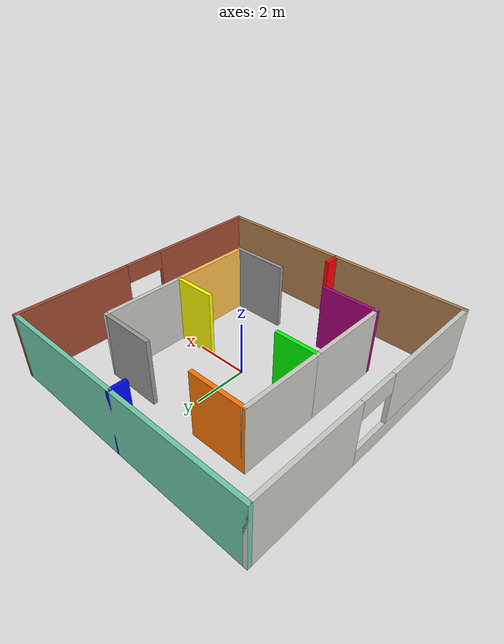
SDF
<?xml version='1.0'?>
<sdf version='1.6'>
  <model name='project_building'>
    <pose frame=''>0 0 0 0 -0 0</pose>
    <link name='Wall_0'>
      <collision name='Wall_0_Collision'>
        <geometry>
          <box>
            <size>3.15 0.15 2.5</size>
          </box>
        </geometry>
        <pose frame=''>0 0 1.25 0 -0 0</pose>
      </collision>
      <visual name='Wall_0_Visual'>
        <pose frame=''>0 0 1.25 0 -0 0</pose>
        <geometry>
          <box>
            <size>3.15 0.15 2.5</size>
          </box>
        </geometry>
        <material>
          <script>
            <uri>file://media/materials/scripts/gazebo.material</uri>
            <name>Gazebo/CeilingTiled</name>
          </script>
          <ambient>0.435294 0.796078 0.67451 1</ambient>
        </material>
        <meta>
          <layer>0</layer>
        </meta>
      </visual>
      <pose frame=''>-3 1.5 0 0 -0 1.5708</pose>
    </link>
    <link name='Wall_10'>
      <collision name='Wall_10_Collision'>
        <geometry>
          <box>
            <size>3.15 0.15 2.5</size>
          </box>
        </geometry>
        <pose frame=''>0 0 1.25 0 -0 0</pose>
      </collision>
      <visual name='Wall_10_Visual'>
        <pose frame=''>0 0 1.25 0 -0 0</pose>
        <geometry>
          <box>
            <size>3.15 0.15 2.5</size>
          </box>
        </geometry>
        <material>
          <script>
            <uri>file://media/materials/scripts/gazebo.material</uri>
            <name>Gazebo/CeilingTiled</name>
          </script>
          <ambient>0.921569 0.807843 0.615686 1</ambient>
        </material>
        <meta>
          <layer>0</layer>
        </meta>
      </visual>
      <pose frame=''>3 1.5 0 0 -0 1.5708</pose>
    </link>
    <link name='Wall_12'>
      <collision name='Wall_12_Collision'>
        <geometry>
          <box>
            <size>2.15 0.15 2.5</size>
          </box>
        </geometry>
        <pose frame=''>0 0 1.25 0 -0 0</pose>
      </collision>
      <visual name='Wall_12_Visual'>
        <pose frame=''>0 0 1.25 0 -0 0</pose>
        <geometry>
          <box>
            <size>2.15 0.15 2.5</size>
          </box>
        </geometry>
        <material>
          <script>
            <uri>file://media/materials/scripts/gazebo.material</uri>
            <name>Gazebo/Grey</name>
          </script>
          <ambient>0.996078 0.47451 0.0196078 1</ambient>
        </material>
        <meta>
          <layer>0</layer>
        </meta>
      </visual>
      <pose frame=''>-2 3 0 0 -0 0</pose>
    </link>
    <link name='Wall_14'>
      <collision name='Wall_14_Collision'>
        <geometry>
          <box>
            <size>2.15 0.15 2.5</size>
          </box>
        </geometry>
        <pose frame=''>0 0 1.25 0 -0 0</pose>
      </collision>
      <visual name='Wall_14_Visual'>
        <pose frame=''>0 0 1.25 0 -0 0</pose>
        <geometry>
          <box>
            <size>2.15 0.15 2.5</size>
          </box>
        </geometry>
        <material>
          <script>
            <uri>file://media/materials/scripts/gazebo.material</uri>
            <name>Gazebo/Grey</name>
          </script>
          <ambient>1 1 1 1</ambient>
        </material>
        <meta>
          <layer>0</layer>
        </meta>
      </visual>
      <pose frame=''>2 3 0 0 -0 0</pose>
    </link>
    <link name='Wall_16'>
      <collision name='Wall_16_Collision'>
        <geometry>
          <box>
            <size>1.65 0.15 2.5</size>
          </box>
        </geometry>
        <pose frame=''>0 0 1.25 0 -0 0</pose>
      </collision>
      <visual name='Wall_16_Visual'>
        <pose frame=''>0 0 1.25 0 -0 0</pose>
        <geometry>
          <box>
            <size>1.65 0.15 2.5</size>
          </box>
        </geometry>
        <material>
          <script>
            <uri>file://media/materials/scripts/gazebo.material</uri>
            <name>Gazebo/Grey</name>
          </script>
          <ambient>0 1 0 1</ambient>
        </material>
        <meta>
          <layer>0</layer>
        </meta>
      </visual>
      <pose frame=''>-2.25 0 0 0 -0 0</pose>
    </link>
    <link name='Wall_18'>
      <collision name='Wall_18_Collision'>
        <geometry>
          <box>
            <size>1.65 0.15 2.5</size>
          </box>
        </geometry>
        <pose frame=''>0 0 1.25 0 -0 0</pose>
      </collision>
      <visual name='Wall_18_Visual'>
        <pose frame=''>0 0 1.25 0 -0 0</pose>
        <geometry>
          <box>
            <size>1.65 0.15 2.5</size>
          </box>
        </geometry>
        <material>
          <script>
            <uri>file://media/materials/scripts/gazebo.material</uri>
            <name>Gazebo/Grey</name>
          </script>
          <ambient>1 1 0.00784314 1</ambient>
        </material>
        <meta>
          <layer>0</layer>
        </meta>
      </visual>
      <pose frame=''>2.25 0 0 0 -0 0</pose>
    </link>
    <link name='Wall_2'>
      <collision name='Wall_2_Collision'>
        <geometry>
          <box>
            <size>3.15 0.15 2.5</size>
          </box>
        </geometry>
        <pose frame=''>0 0 1.25 0 -0 0</pose>
      </collision>
      <visual name='Wall_2_Visual'>
        <pose frame=''>0 0 1.25 0 -0 0</pose>
        <geometry>
          <box>
            <size>3.15 0.15 2.5</size>
          </box>
        </geometry>
        <material>
          <script>
            <uri>file://media/materials/scripts/gazebo.material</uri>
            <name>Gazebo/CeilingTiled</name>
          </script>
          <ambient>0.760784 0.662745 0.627451 1</ambient>
        </material>
        <meta>
          <layer>0</layer>
        </meta>
      </visual>
      <pose frame=''>-3 -1.5 0 0 -0 1.5708</pose>
    </link>
    <link name='Wall_20'>
      <pose frame=''>5 0 0 0 0 -1.5708</pose>
      <visual name='Wall_20_Visual_0'>
        <pose frame=''>-2.9125 0 1.25 0 -0 0</pose>
        <geometry>
          <box>
            <size>4.325 0.15 2.5</size>
          </box>
        </geometry>
        <material>
          <script>
            <uri>file://media/materials/scripts/gazebo.material</uri>
            <name>Gazebo/Bricks</name>
          </script>
          <ambient>1 1 1 1</ambient>
        </material>
        <meta>
          <layer>0</layer>
        </meta>
      </visual>
      <collision name='Wall_20_Collision_0'>
        <geometry>
          <box>
            <size>4.325 0.15 2.5</size>
          </box>
        </geometry>
        <pose frame=''>-2.9125 0 1.25 0 -0 0</pose>
      </collision>
      <visual name='Wall_20_Visual_1'>
        <pose frame=''>2.1625 0 0.3 0 -0 0</pose>
        <geometry>
          <box>
            <size>5.825 0.15 0.6</size>
          </box>
        </geometry>
        <material>
          <script>
            <uri>file://media/materials/scripts/gazebo.material</uri>
            <name>Gazebo/Bricks</name>
          </script>
          <ambient>1 1 1 1</ambient>
        </material>
        <meta>
          <layer>0</layer>
        </meta>
      </visual>
      <collision name='Wall_20_Collision_1'>
        <geometry>
          <box>
            <size>5.825 0.15 0.6</size>
          </box>
        </geometry>
        <pose frame=''>2.1625 0 0.3 0 -0 0</pose>
      </collision>
      <visual name='Wall_20_Visual_2'>
        <pose frame=''>2.9125 0 1.55 0 -0 0</pose>
        <geometry>
          <box>
            <size>4.325 0.15 1.9</size>
          </box>
        </geometry>
        <material>
          <script>
            <uri>file://media/materials/scripts/gazebo.material</uri>
            <name>Gazebo/Bricks</name>
          </script>
          <ambient>1 1 1 1</ambient>
        </material>
        <meta>
          <layer>0</layer>
        </meta>
      </visual>
      <collision name='Wall_20_Collision_2'>
        <geometry>
          <box>
            <size>4.325 0.15 1.9</size>
          </box>
        </geometry>
        <pose frame=''>2.9125 0 1.55 0 -0 0</pose>
      </collision>
      <visual name='Wall_20_Visual_3'>
        <pose frame=''>0 0 2.15 0 -0 0</pose>
        <geometry>
          <box>
            <size>1.5 0.15 0.7</size>
          </box>
        </geometry>
        <material>
          <script>
            <uri>file://media/materials/scripts/gazebo.material</uri>
            <name>Gazebo/Bricks</name>
          </script>
          <ambient>1 1 1 1</ambient>
        </material>
        <meta>
          <layer>0</layer>
        </meta>
      </visual>
      <collision name='Wall_20_Collision_3'>
        <geometry>
          <box>
            <size>1.5 0.15 0.7</size>
          </box>
        </geometry>
        <pose frame=''>0 0 2.15 0 -0 0</pose>
      </collision>
    </link>
    <link name='Wall_22'>
      <collision name='Wall_22_Collision'>
        <geometry>
          <box>
            <size>10.15 0.15 2.5</size>
          </box>
        </geometry>
        <pose frame=''>0 0 1.25 0 -0 0</pose>
      </collision>
      <visual name='Wall_22_Visual'>
        <pose frame=''>0 0 1.25 0 -0 0</pose>
        <geometry>
          <box>
            <size>10.15 0.15 2.5</size>
          </box>
        </geometry>
        <material>
          <script>
            <uri>file://media/materials/scripts/gazebo.material</uri>
            <name>Gazebo/Wood</name>
          </script>
          <ambient>1 1 1 1</ambient>
        </material>
        <meta>
          <layer>0</layer>
        </meta>
      </visual>
      <pose frame=''>0 -5 0 0 -0 0</pose>
    </link>
    <link name='Wall_24'>
      <pose frame=''>-5 0 0 0 0 -1.5708</pose>
      <visual name='Wall_24_Visual_0'>
        <pose frame=''>-2.9125 0 1.25 0 -0 0</pose>
        <geometry>
          <box>
            <size>4.325 0.15 2.5</size>
          </box>
        </geometry>
        <material>
          <script>
            <uri>file://media/materials/scripts/gazebo.material</uri>
            <name>Gazebo/CeilingTiled</name>
          </script>
          <ambient>1 1 1 1</ambient>
        </material>
        <meta>
          <layer>0</layer>
        </meta>
      </visual>
      <collision name='Wall_24_Collision_0'>
        <geometry>
          <box>
            <size>4.325 0.15 2.5</size>
          </box>
        </geometry>
        <pose frame=''>-2.9125 0 1.25 0 -0 0</pose>
      </collision>
      <visual name='Wall_24_Visual_1'>
        <pose frame=''>2.1625 0 0.3 0 -0 0</pose>
        <geometry>
          <box>
            <size>5.825 0.15 0.6</size>
          </box>
        </geometry>
        <material>
          <script>
            <uri>file://media/materials/scripts/gazebo.material</uri>
            <name>Gazebo/CeilingTiled</name>
          </script>
          <ambient>1 1 1 1</ambient>
        </material>
        <meta>
          <layer>0</layer>
        </meta>
      </visual>
      <collision name='Wall_24_Collision_1'>
        <geometry>
          <box>
            <size>5.825 0.15 0.6</size>
          </box>
        </geometry>
        <pose frame=''>2.1625 0 0.3 0 -0 0</pose>
      </collision>
      <visual name='Wall_24_Visual_2'>
        <pose frame=''>2.9125 0 1.55 0 -0 0</pose>
        <geometry>
          <box>
            <size>4.325 0.15 1.9</size>
          </box>
        </geometry>
        <material>
          <script>
            <uri>file://media/materials/scripts/gazebo.material</uri>
            <name>Gazebo/CeilingTiled</name>
          </script>
          <ambient>1 1 1 1</ambient>
        </material>
        <meta>
          <layer>0</layer>
        </meta>
      </visual>
      <collision name='Wall_24_Collision_2'>
        <geometry>
          <box>
            <size>4.325 0.15 1.9</size>
          </box>
        </geometry>
        <pose frame=''>2.9125 0 1.55 0 -0 0</pose>
      </collision>
      <visual name='Wall_24_Visual_3'>
        <pose frame=''>0 0 2.15 0 -0 0</pose>
        <geometry>
          <box>
            <size>1.5 0.15 0.7</size>
          </box>
        </geometry>
        <material>
          <script>
            <uri>file://media/materials/scripts/gazebo.material</uri>
            <name>Gazebo/CeilingTiled</name>
          </script>
          <ambient>1 1 1 1</ambient>
        </material>
        <meta>
          <layer>0</layer>
        </meta>
      </visual>
      <collision name='Wall_24_Collision_3'>
        <geometry>
          <box>
            <size>1.5 0.15 0.7</size>
          </box>
        </geometry>
        <pose frame=''>0 0 2.15 0 -0 0</pose>
      </collision>
    </link>
    <link name='Wall_26'>
      <collision name='Wall_26_Collision'>
        <geometry>
          <box>
            <size>10.15 0.15 2.5</size>
          </box>
        </geometry>
        <pose frame=''>0 0 1.25 0 -0 0</pose>
      </collision>
      <visual name='Wall_26_Visual'>
        <pose frame=''>0 0 1.25 0 -0 0</pose>
        <geometry>
          <box>
            <size>10.15 0.15 2.5</size>
          </box>
        </geometry>
        <material>
          <script>
            <uri>file://media/materials/scripts/gazebo.material</uri>
            <name>Gazebo/Grey</name>
          </script>
          <ambient>0.435294 0.796078 0.67451 1</ambient>
        </material>
        <meta>
          <layer>0</layer>
        </meta>
      </visual>
      <pose frame=''>0 5 0 0 -0 0</pose>
    </link>
    <link name='Wall_28'>
      <collision name='Wall_28_Collision'>
        <geometry>
          <box>
            <size>0.65 0.15 2.5</size>
          </box>
        </geometry>
        <pose frame=''>0 0 1.25 0 -0 0</pose>
      </collision>
      <visual name='Wall_28_Visual'>
        <pose frame=''>0 0 1.25 0 -0 0</pose>
        <geometry>
          <box>
            <size>0.65 0.15 2.5</size>
          </box>
        </geometry>
        <material>
          <script>
            <uri>file://media/materials/scripts/gazebo.material</uri>
            <name>Gazebo/Grey</name>
          </script>
          <ambient>0 0.0235294 1 1</ambient>
        </material>
        <meta>
          <layer>0</layer>
        </meta>
      </visual>
      <pose frame=''>0 4.75 0 0 -0 1.5708</pose>
    </link>
    <link name='Wall_30'>
      <collision name='Wall_30_Collision'>
        <geometry>
          <box>
            <size>0.65 0.15 2.5</size>
          </box>
        </geometry>
        <pose frame=''>0 0 1.25 0 -0 0</pose>
      </collision>
      <visual name='Wall_30_Visual'>
        <pose frame=''>0 0 1.25 0 -0 0</pose>
        <geometry>
          <box>
            <size>0.65 0.15 2.5</size>
          </box>
        </geometry>
        <material>
          <script>
            <uri>file://media/materials/scripts/gazebo.material</uri>
            <name>Gazebo/Grey</name>
          </script>
          <ambient>1 0 0.0156863 1</ambient>
        </material>
        <meta>
          <layer>0</layer>
        </meta>
      </visual>
      <pose frame=''>0 -4.75 0 0 -0 1.5708</pose>
    </link>
    <link name='Wall_4'>
      <collision name='Wall_4_Collision'>
        <geometry>
          <box>
            <size>2.15 0.15 2.5</size>
          </box>
        </geometry>
        <pose frame=''>0 0 1.25 0 -0 0</pose>
      </collision>
      <visual name='Wall_4_Visual'>
        <pose frame=''>0 0 1.25 0 -0 0</pose>
        <geometry>
          <box>
            <size>2.15 0.15 2.5</size>
          </box>
        </geometry>
        <material>
          <script>
            <uri>file://media/materials/scripts/gazebo.material</uri>
            <name>Gazebo/Grey</name>
          </script>
          <ambient>0.666667 0 0.498039 1</ambient>
        </material>
        <meta>
          <layer>0</layer>
        </meta>
      </visual>
      <pose frame=''>-2 -3 0 0 -0 0</pose>
    </link>
    <link name='Wall_6'>
      <collision name='Wall_6_Collision'>
        <geometry>
          <box>
            <size>2.15 0.15 2.5</size>
          </box>
        </geometry>
        <pose frame=''>0 0 1.25 0 -0 0</pose>
      </collision>
      <visual name='Wall_6_Visual'>
        <pose frame=''>0 0 1.25 0 -0 0</pose>
        <geometry>
          <box>
            <size>2.15 0.15 2.5</size>
          </box>
        </geometry>
        <material>
          <script>
            <uri>file://media/materials/scripts/gazebo.material</uri>
            <name>Gazebo/Grey</name>
          </script>
          <ambient>1 1 1 1</ambient>
        </material>
        <meta>
          <layer>0</layer>
        </meta>
      </visual>
      <pose frame=''>2 -3 0 0 -0 0</pose>
    </link>
    <link name='Wall_8'>
      <collision name='Wall_8_Collision'>
        <geometry>
          <box>
            <size>3.15 0.15 2.5</size>
          </box>
        </geometry>
        <pose frame=''>0 0 1.25 0 -0 0</pose>
      </collision>
      <visual name='Wall_8_Visual'>
        <pose frame=''>0 0 1.25 0 -0 0</pose>
        <geometry>
          <box>
            <size>3.15 0.15 2.5</size>
          </box>
        </geometry>
        <material>
          <script>
            <uri>file://media/materials/scripts/gazebo.material</uri>
            <name>Gazebo/Grey</name>
          </script>
          <ambient>1 0.764706 0.305882 1</ambient>
        </material>
        <meta>
          <layer>0</layer>
        </meta>
      </visual>
      <pose frame=''>3 -1.5 0 0 -0 1.5708</pose>
    </link>
    <static>1</static>
  </model>
</sdf>
